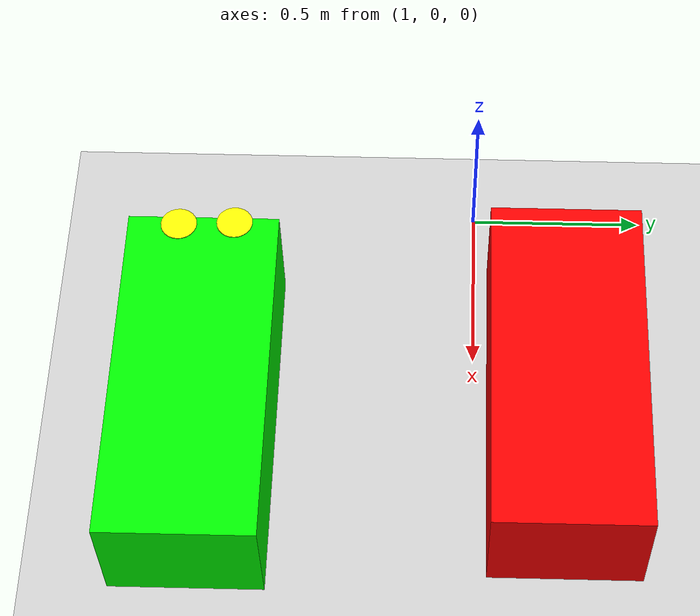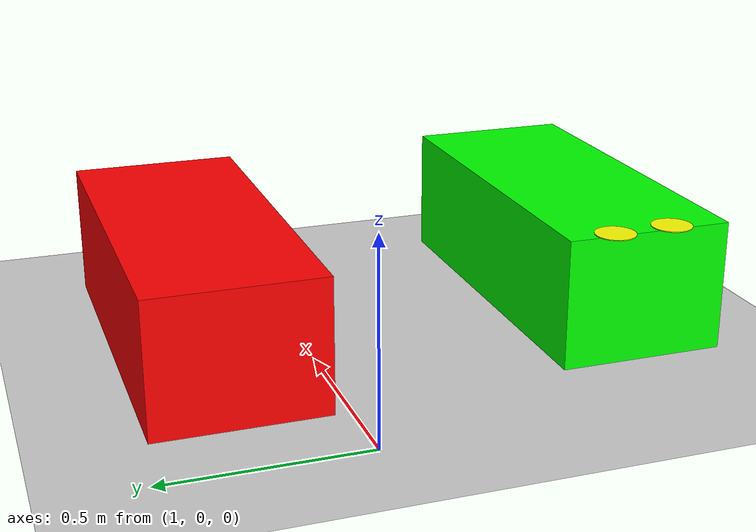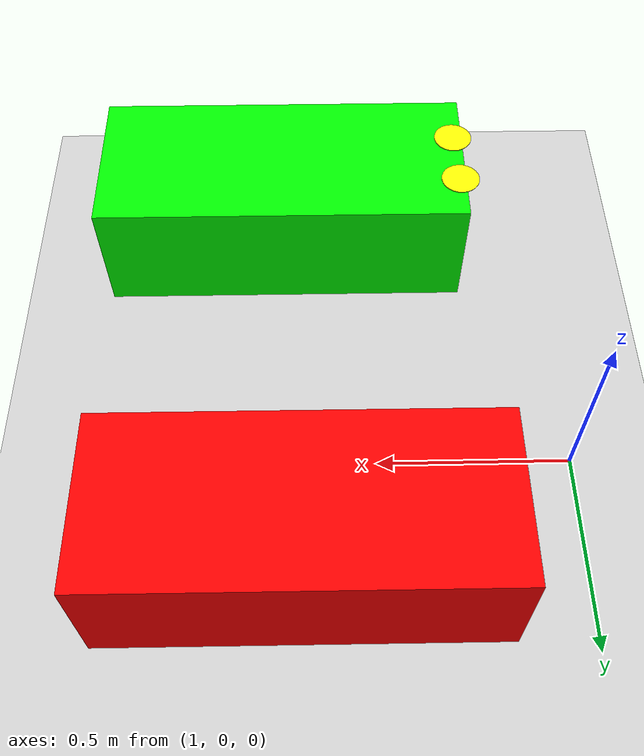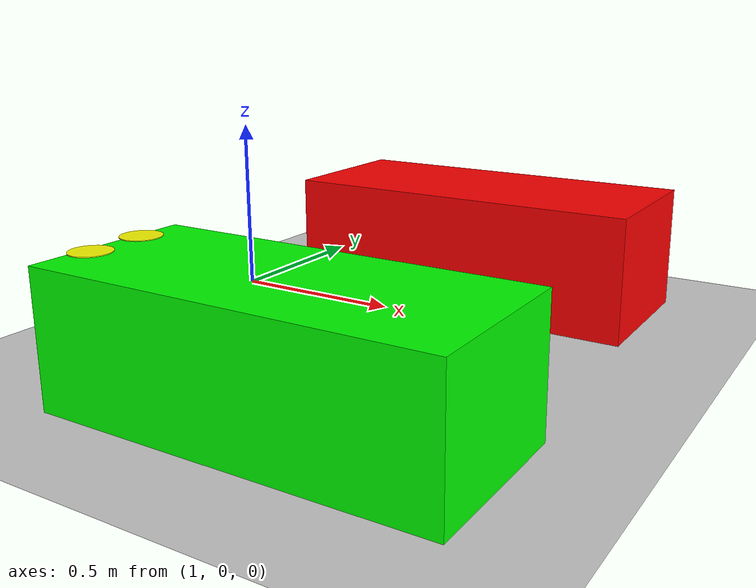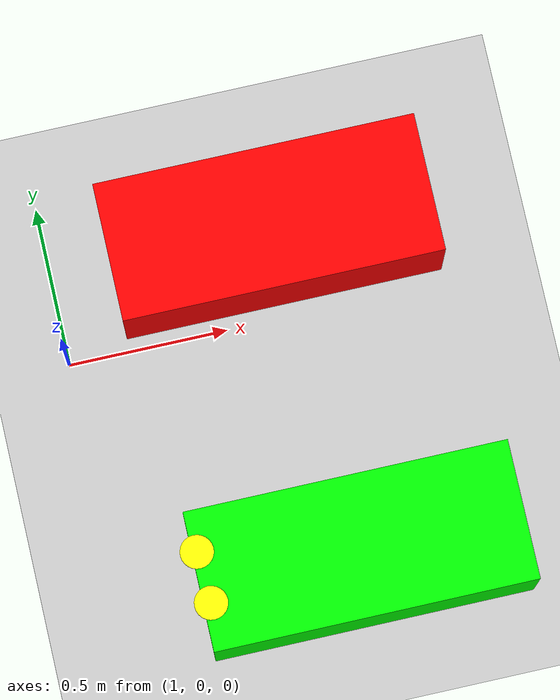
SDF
<sdf version="1.6">
 <world name="default">
  <light name="sun" type="directional">
   <pose>0 0 10 0 -0 0</pose>
   <diffuse>0.8 0.8 0.8 1</diffuse>
   <specular>0.1 0.1 0.1 1</specular>
   <attenuation>
    <range>1000</range>
    <constant>0.9</constant>
    <linear>0.01</linear>
    <quadratic>0.001</quadratic>
   </attenuation>
   <direction>-0.5 0.5 -1</direction>
  </light>
  <model name="ground_plane">
   <static>1</static>
   <link name="link">
    <collision name="collision">
     <geometry><plane><normal>0 0 1</normal><size>100 100</size></plane></geometry>
     <surface><friction><ode><mu>100</mu><mu2>50</mu2></ode></friction></surface>
    </collision>
    <visual name="visual">
     <cast_shadows>0</cast_shadows>
     <geometry><plane><normal>0 0 1</normal><size>100 100</size></plane></geometry>
     <material>
      <script><uri>file://media/materials/scripts/gazebo.material</uri><name>Gazebo/Grey</name></script>
     </material>
    </visual>
   </link>
  </model>
  <gravity>0 0 -9.8</gravity>
  <magnetic_field>6e-06 2.3e-05 -4.2e-05</magnetic_field>
  <atmosphere type="adiabatic"/>
  <physics name="default_physics" default="0" type="ode">
   <max_step_size>0.001</max_step_size>
   <real_time_factor>1</real_time_factor>
   <real_time_update_rate>1000</real_time_update_rate>
  </physics>
  <scene><ambient>0.4 0.4 0.4 1</ambient><background>0.7 0.7 0.7 1</background><shadows>1</shadows></scene>
  <spherical_coordinates>
   <surface_model>EARTH_WGS84</surface_model>
   <latitude_deg>0</latitude_deg>
   <longitude_deg>0</longitude_deg>
   <elevation>0</elevation>
   <heading_deg>0</heading_deg>
  </spherical_coordinates>
  <model name="box_init">
   <link name="link">
    <pose>-0.040485 -0.007941 0 0 -0 0</pose>
    <inertial>
     <mass>0.122054</mass>
     <inertia>
      <ixx>0.00350802</ixx>
      <ixy>0</ixy>
      <ixz>0</ixz>
      <iyy>0.0131642</iyy>
      <iyz>0</iyz>
      <izz>0.010686</izz>
     </inertia>
    </inertial>
    <visual name="visual">
     <geometry><box><size>1 0.431015 0.340315</size></box></geometry>
     <material>
      <script><name>Gazebo/Grey</name><uri>file://media/materials/scripts/gazebo.material</uri></script>
      <ambient>0 1 0 0</ambient>
      <diffuse>0 1 0 0</diffuse>
      <specular>0 1 0 0</specular>
      <emissive>0 1 0 0</emissive>
      <shader type="vertex"><normal_map>__default__</normal_map></shader>
     </material>
    </visual>
    <collision name="collision">
     <geometry><box><size>1 0.431015 0.340315</size></box></geometry>
     <surface>
      <friction>
       <ode><mu>1</mu><mu2>1</mu2><fdir1>0 0 0</fdir1><slip1>0</slip1><slip2>0</slip2></ode>
       <torsional>
        <coefficient>1</coefficient>
        <patch_radius>0</patch_radius>
        <surface_radius>0</surface_radius>
        <use_patch_radius>1</use_patch_radius>
        <ode><slip>0</slip></ode>
       </torsional>
      </friction>
      <bounce><restitution_coefficient>0</restitution_coefficient><threshold>1e+06</threshold></bounce>
      <contact>
       <collide_without_contact>0</collide_without_contact>
       <collide_without_contact_bitmask>1</collide_without_contact_bitmask>
       <collide_bitmask>1</collide_bitmask>
       <ode>
        <soft_cfm>0</soft_cfm>
        <soft_erp>0.2</soft_erp>
        <kp>1e+13</kp>
        <kd>1</kd>
        <max_vel>0.01</max_vel>
        <min_depth>0</min_depth>
       </ode>
       <bullet>
        <split_impulse>1</split_impulse>
        <split_impulse_penetration_threshold>-0.01</split_impulse_penetration_threshold>
        <soft_cfm>0</soft_cfm>
        <soft_erp>0.2</soft_erp>
        <kp>1e+13</kp>
        <kd>1</kd>
       </bullet>
      </contact>
     </surface>
    </collision>
   </link>
   <static>0</static>
   <pose>1.7815 -0.771284 0.163039 -2e-06 -2.2e-05 0.000685</pose>
  </model>
  <model name="box_end">
   <link name="link">
    <pose>-0.040485 -0.007941 0 0 -0 0</pose>
    <inertial>
     <mass>0.122054</mass>
     <inertia>
      <ixx>0.00350802</ixx>
      <ixy>0</ixy>
      <ixz>0</ixz>
      <iyy>0.0131642</iyy>
      <iyz>0</iyz>
      <izz>0.010686</izz>
     </inertia>
    </inertial>
    <visual name="visual">
     <geometry><box><size>1 0.431015 0.340315</size></box></geometry>
     <material>
      <script><name>Gazebo/Grey</name><uri>file://media/materials/scripts/gazebo.material</uri></script>
      <ambient>1 0 0 0</ambient>
      <diffuse>1 0 0 0</diffuse>
      <specular>1 0 0 0</specular>
      <emissive>1 0 0 0</emissive>
      <shader type="vertex"><normal_map>__default__</normal_map></shader>
     </material>
    </visual>
    <collision name="collision">
     <geometry><box><size>1 0.431015 0.340315</size></box></geometry>
     <surface>
      <friction>
       <ode><mu>1</mu><mu2>1</mu2><fdir1>0 0 0</fdir1><slip1>0</slip1><slip2>0</slip2></ode>
       <torsional>
        <coefficient>1</coefficient>
        <patch_radius>0</patch_radius>
        <surface_radius>0</surface_radius>
        <use_patch_radius>1</use_patch_radius>
        <ode><slip>0</slip></ode>
       </torsional>
      </friction>
      <bounce><restitution_coefficient>0</restitution_coefficient><threshold>1e+06</threshold></bounce>
      <contact>
       <collide_without_contact>0</collide_without_contact>
       <collide_without_contact_bitmask>1</collide_without_contact_bitmask>
       <collide_bitmask>1</collide_bitmask>
       <ode>
        <soft_cfm>0</soft_cfm>
        <soft_erp>0.2</soft_erp>
        <kp>1e+13</kp>
        <kd>1</kd>
        <max_vel>0.01</max_vel>
        <min_depth>0</min_depth>
       </ode>
       <bullet>
        <split_impulse>1</split_impulse>
        <split_impulse_penetration_threshold>-0.01</split_impulse_penetration_threshold>
        <soft_cfm>0</soft_cfm>
        <soft_erp>0.2</soft_erp>
        <kp>1e+13</kp>
        <kd>1</kd>
       </bullet>
      </contact>
     </surface>
    </collision>
   </link>
   <static>0</static>
   <pose>1.73064 0.264376 0.170155 -1.2e-05 0 0</pose>
  </model>
  <model name="coin_0">
   <link name="link">
    <pose>-1.32139 -0.532823 0.243182 0 -0 0</pose>
    <inertial>
     <mass>2.16177e-05</mass>
     <inertia>
      <ixx>1.44171e-08</ixx>
      <ixy>0</ixy>
      <ixz>0</ixz>
      <iyy>1.44171e-08</iyy>
      <iyz>0</iyz>
      <izz>2.88195e-08</izz>
     </inertia>
    </inertial>
    <visual name="visual">
     <geometry><cylinder><radius>0.0515671</radius><length>0.00202682</length></cylinder></geometry>
     <material>
      <script><name>Gazebo/Grey</name><uri>file://media/materials/scripts/gazebo.material</uri></script>
      <ambient>1 1 0 0</ambient>
      <diffuse>1 1 0 0</diffuse>
      <specular>1 1 0.01 0</specular>
      <emissive>1 1 0 0</emissive>
      <shader type="vertex"><normal_map>__default__</normal_map></shader>
     </material>
    </visual>
    <collision name="collision">
     <geometry><cylinder><radius>0.051567</radius><length>0.002027</length></cylinder></geometry>
     <surface>
      <friction>
       <ode><mu>1</mu><mu2>1</mu2><fdir1>0 0 0</fdir1><slip1>0</slip1><slip2>0</slip2></ode>
       <torsional>
        <coefficient>1</coefficient>
        <patch_radius>0</patch_radius>
        <surface_radius>0</surface_radius>
        <use_patch_radius>1</use_patch_radius>
        <ode><slip>0</slip></ode>
       </torsional>
      </friction>
      <bounce><restitution_coefficient>0</restitution_coefficient><threshold>1e+06</threshold></bounce>
      <contact>
       <collide_without_contact>0</collide_without_contact>
       <collide_without_contact_bitmask>1</collide_without_contact_bitmask>
       <collide_bitmask>1</collide_bitmask>
       <ode>
        <soft_cfm>0</soft_cfm>
        <soft_erp>0.2</soft_erp>
        <kp>1e+13</kp>
        <kd>1</kd>
        <max_vel>0.01</max_vel>
        <min_depth>0</min_depth>
       </ode>
       <bullet>
        <split_impulse>1</split_impulse>
        <split_impulse_penetration_threshold>-0.01</split_impulse_penetration_threshold>
        <soft_cfm>0</soft_cfm>
        <soft_erp>0.2</soft_erp>
        <kp>1e+13</kp>
        <kd>1</kd>
       </bullet>
      </contact>
     </surface>
    </collision>
   </link>
   <static>0</static>
   <pose>2.55767 -0.109958 0.091063 -0.000139 -8.6e-05 0.036445</pose>
  </model>
  <model name="coin_0_clone">
   <link name="link">
    <pose>-1.32139 -0.532823 0.243182 0 -0 0</pose>
    <inertial>
     <mass>2.16177e-05</mass>
     <inertia>
      <ixx>1.44171e-08</ixx>
      <ixy>0</ixy>
      <ixz>0</ixz>
      <iyy>1.44171e-08</iyy>
      <iyz>0</iyz>
      <izz>2.88195e-08</izz>
     </inertia>
    </inertial>
    <visual name="visual">
     <geometry><cylinder><radius>0.0515671</radius><length>0.00202682</length></cylinder></geometry>
     <material>
      <script><name>Gazebo/Grey</name><uri>file://media/materials/scripts/gazebo.material</uri></script>
      <ambient>1 1 0 0</ambient>
      <diffuse>1 1 0 0</diffuse>
      <specular>1 1 0.01 0</specular>
      <emissive>1 1 0 0</emissive>
      <shader type="vertex"><normal_map>__default__</normal_map></shader>
     </material>
    </visual>
    <collision name="collision">
     <geometry><cylinder><radius>0.051567</radius><length>0.002027</length></cylinder></geometry>
     <surface>
      <friction>
       <ode><mu>1</mu><mu2>1</mu2><fdir1>0 0 0</fdir1><slip1>0</slip1><slip2>0</slip2></ode>
       <torsional>
        <coefficient>1</coefficient>
        <patch_radius>0</patch_radius>
        <surface_radius>0</surface_radius>
        <use_patch_radius>1</use_patch_radius>
        <ode><slip>0</slip></ode>
       </torsional>
      </friction>
      <bounce><restitution_coefficient>0</restitution_coefficient><threshold>1e+06</threshold></bounce>
      <contact>
       <collide_without_contact>0</collide_without_contact>
       <collide_without_contact_bitmask>1</collide_without_contact_bitmask>
       <collide_bitmask>1</collide_bitmask>
       <ode>
        <soft_cfm>0</soft_cfm>
        <soft_erp>0.2</soft_erp>
        <kp>1e+13</kp>
        <kd>1</kd>
        <max_vel>0.01</max_vel>
        <min_depth>0</min_depth>
       </ode>
       <bullet>
        <split_impulse>1</split_impulse>
        <split_impulse_penetration_threshold>-0.01</split_impulse_penetration_threshold>
        <soft_cfm>0</soft_cfm>
        <soft_erp>0.2</soft_erp>
        <kp>1e+13</kp>
        <kd>1</kd>
       </bullet>
      </contact>
     </surface>
    </collision>
   </link>
   <static>0</static>
   <pose>2.58645 -0.316682 0.09111 -9.7e-05 -0.000105 -0.000138</pose>
  </model>
 </world>
</sdf>
